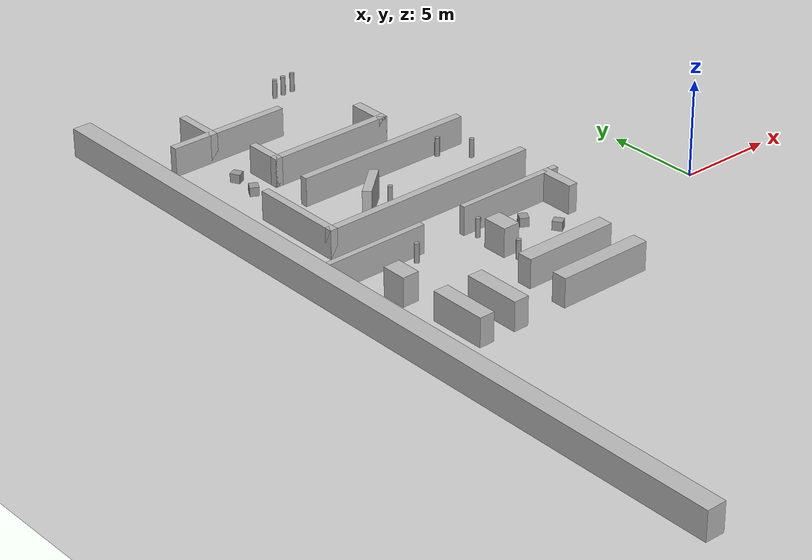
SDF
<sdf version="1.7">
 <world name="test_world">
  <model name="ground_plane">
   <static>1</static>
   <link name="link">
    <collision name="collision">
     <geometry><plane><normal>0 0 1</normal><size>100 100</size></plane></geometry>
    </collision>
    <visual name="visual">
     <geometry><plane><normal>0 0 1</normal><size>100 100</size></plane></geometry>
     <material>
      <script>
       <uri>file://media/materials/scripts/gazebo.material</uri>
       <name>__default__</name>
       <n>Gazebo/Grey</n>
      </script>
     </material>
    </visual>
   </link>
  </model>
  <model name="outer_left">
   <static>1</static>
   <pose>-20.5 0 0.75 0 -0 0</pose>
   <link name="link">
    <collision name="collision"><geometry><box><size>1 42 1.5</size></box></geometry></collision>
    <visual name="visual">
     <geometry><box><size>1 42 1.5</size></box></geometry>
     <material>
      <script>
       <uri>file://media/materials/scripts/gazebo.material</uri>
       <name>__default__</name>
       <n>Gazebo/Grey</n>
      </script>
     </material>
    </visual>
   </link>
  </model>
  <model name="hw_0">
   <static>1</static>
   <pose>-15.3 16.25 0.75 0 -0 0</pose>
   <link name="link">
    <collision name="collision"><geometry><box><size>6.5 0.4 1.5</size></box></geometry></collision>
    <visual name="visual">
     <geometry><box><size>6.5 0.4 1.5</size></box></geometry>
     <material>
      <script>
       <uri>file://media/materials/scripts/gazebo.material</uri>
       <name>__default__</name>
       <n>Gazebo/Grey</n>
      </script>
     </material>
    </visual>
   </link>
  </model>
  <model name="hw_1">
   <static>1</static>
   <pose>-12.05 5.25 0.75 0 -0 0</pose>
   <link name="link">
    <collision name="collision"><geometry><box><size>12 0.4 1.5</size></box></geometry></collision>
    <visual name="visual">
     <geometry><box><size>12 0.4 1.5</size></box></geometry>
     <material>
      <script>
       <uri>file://media/materials/scripts/gazebo.material</uri>
       <name>__default__</name>
       <n>Gazebo/Grey</n>
      </script>
     </material>
    </visual>
   </link>
  </model>
  <model name="hw_2">
   <static>1</static>
   <pose>-10.9 9.85 0.75 0 -0 0</pose>
   <link name="link">
    <collision name="collision"><geometry><box><size>9.7 0.4 1.5</size></box></geometry></collision>
    <visual name="visual">
     <geometry><box><size>9.7 0.4 1.5</size></box></geometry>
     <material>
      <script>
       <uri>file://media/materials/scripts/gazebo.material</uri>
       <name>__default__</name>
       <n>Gazebo/Grey</n>
      </script>
     </material>
    </visual>
   </link>
  </model>
  <model name="hw_3">
   <static>1</static>
   <pose>-12.2 12.25 0.75 0 -0 0</pose>
   <link name="link">
    <collision name="collision"><geometry><box><size>6.9 0.4 1.5</size></box></geometry></collision>
    <visual name="visual">
     <geometry><box><size>6.9 0.4 1.5</size></box></geometry>
     <material>
      <script>
       <uri>file://media/materials/scripts/gazebo.material</uri>
       <name>__default__</name>
       <n>Gazebo/Grey</n>
      </script>
     </material>
    </visual>
   </link>
  </model>
  <model name="hw_4">
   <static>1</static>
   <pose>-13.6 7.55 0.75 0 -0 0.712137</pose>
   <link name="link">
    <collision name="collision"><geometry><box><size>2.16529 0.451675 1.5</size></box></geometry></collision>
    <visual name="visual">
     <geometry><box><size>2.16529 0.451675 1.5</size></box></geometry>
     <material>
      <script>
       <uri>file://media/materials/scripts/gazebo.material</uri>
       <name>__default__</name>
       <n>Gazebo/Grey</n>
      </script>
     </material>
    </visual>
   </link>
  </model>
  <model name="hw_8">
   <static>1</static>
   <pose>-10.55 -2.35 0.75 0 -0 0</pose>
   <link name="link">
    <collision name="collision"><geometry><box><size>5 0.8 1.5</size></box></geometry></collision>
    <visual name="visual">
     <geometry><box><size>5 0.8 1.5</size></box></geometry>
     <material>
      <script>
       <uri>file://media/materials/scripts/gazebo.material</uri>
       <name>__default__</name>
       <n>Gazebo/Grey</n>
      </script>
     </material>
    </visual>
   </link>
  </model>
  <model name="hw_9">
   <static>1</static>
   <pose>-10.55 -4.55 0.75 0 -0 0</pose>
   <link name="link">
    <collision name="collision"><geometry><box><size>5 0.8 1.5</size></box></geometry></collision>
    <visual name="visual">
     <geometry><box><size>5 0.8 1.5</size></box></geometry>
     <material>
      <script>
       <uri>file://media/materials/scripts/gazebo.material</uri>
       <name>__default__</name>
       <n>Gazebo/Grey</n>
      </script>
     </material>
    </visual>
   </link>
  </model>
  <model name="hw_10">
   <static>1</static>
   <pose>-9.1 2.9 0.75 0 -0 0</pose>
   <link name="link">
    <collision name="collision"><geometry><box><size>5.9 0.3 1.5</size></box></geometry></collision>
    <visual name="visual">
     <geometry><box><size>5.9 0.3 1.5</size></box></geometry>
     <material>
      <script>
       <uri>file://media/materials/scripts/gazebo.material</uri>
       <name>__default__</name>
       <n>Gazebo/Grey</n>
      </script>
     </material>
    </visual>
   </link>
  </model>
  <model name="vw_132">
   <static>1</static>
   <pose>-16.25 17.3 0.75 0 -0 0</pose>
   <link name="link">
    <collision name="collision"><geometry><box><size>0.4 2.5 1.5</size></box></geometry></collision>
    <visual name="visual">
     <geometry><box><size>0.4 2.5 1.5</size></box></geometry>
     <material>
      <script>
       <uri>file://media/materials/scripts/gazebo.material</uri>
       <name>__default__</name>
       <n>Gazebo/Grey</n>
      </script>
     </material>
    </visual>
   </link>
  </model>
  <model name="vw_155">
   <static>1</static>
   <pose>-15.45 13.05 0.75 0 -0 0</pose>
   <link name="link">
    <collision name="collision"><geometry><box><size>0.4 2 1.5</size></box></geometry></collision>
    <visual name="visual">
     <geometry><box><size>0.4 2 1.5</size></box></geometry>
     <material>
      <script>
       <uri>file://media/materials/scripts/gazebo.material</uri>
       <name>__default__</name>
       <n>Gazebo/Grey</n>
      </script>
     </material>
    </visual>
   </link>
  </model>
  <model name="vw_156">
   <static>1</static>
   <pose>-9 13.05 0.75 0 -0 0</pose>
   <link name="link">
    <collision name="collision"><geometry><box><size>0.5 2 1.5</size></box></geometry></collision>
    <visual name="visual">
     <geometry><box><size>0.5 2 1.5</size></box></geometry>
     <material>
      <script>
       <uri>file://media/materials/scripts/gazebo.material</uri>
       <name>__default__</name>
       <n>Gazebo/Grey</n>
      </script>
     </material>
    </visual>
   </link>
  </model>
  <model name="vw_181">
   <static>1</static>
   <pose>-17.85 7.55 0.75 0 -0 0</pose>
   <link name="link">
    <collision name="collision"><geometry><box><size>0.4 5 1.5</size></box></geometry></collision>
    <visual name="visual">
     <geometry><box><size>0.4 5 1.5</size></box></geometry>
     <material>
      <script>
       <uri>file://media/materials/scripts/gazebo.material</uri>
       <name>__default__</name>
       <n>Gazebo/Grey</n>
      </script>
     </material>
    </visual>
   </link>
  </model>
  <model name="vw_228">
   <static>1</static>
   <pose>-6.8 2.05 0.75 0 -0 0</pose>
   <link name="link">
    <collision name="collision"><geometry><box><size>0.5 2 1.5</size></box></geometry></collision>
    <visual name="visual">
     <geometry><box><size>0.5 2 1.5</size></box></geometry>
     <material>
      <script>
       <uri>file://media/materials/scripts/gazebo.material</uri>
       <name>__default__</name>
       <n>Gazebo/Grey</n>
      </script>
     </material>
    </visual>
   </link>
  </model>
  <model name="vw_236">
   <static>1</static>
   <pose>-11.6 0.7 0.75 0 -0 0</pose>
   <link name="link">
    <collision name="collision"><geometry><box><size>0.9 1.3 1.5</size></box></geometry></collision>
    <visual name="visual">
     <geometry><box><size>0.9 1.3 1.5</size></box></geometry>
     <material>
      <script>
       <uri>file://media/materials/scripts/gazebo.material</uri>
       <name>__default__</name>
       <n>Gazebo/Grey</n>
      </script>
     </material>
    </visual>
   </link>
  </model>
  <model name="vw_241">
   <static>1</static>
   <pose>-17.65 -3.45 0.75 0 -0 0</pose>
   <link name="link">
    <collision name="collision"><geometry><box><size>0.8 3 1.5</size></box></geometry></collision>
    <visual name="visual">
     <geometry><box><size>0.8 3 1.5</size></box></geometry>
     <material>
      <script>
       <uri>file://media/materials/scripts/gazebo.material</uri>
       <name>__default__</name>
       <n>Gazebo/Grey</n>
      </script>
     </material>
    </visual>
   </link>
  </model>
  <model name="vw_242">
   <static>1</static>
   <pose>-15.65 -3.45 0.75 0 -0 0</pose>
   <link name="link">
    <collision name="collision"><geometry><box><size>0.8 3 1.5</size></box></geometry></collision>
    <visual name="visual">
     <geometry><box><size>0.8 3 1.5</size></box></geometry>
     <material>
      <script>
       <uri>file://media/materials/scripts/gazebo.material</uri>
       <name>__default__</name>
       <n>Gazebo/Grey</n>
      </script>
     </material>
    </visual>
   </link>
  </model>
  <model name="hw_10_clone">
   <static>1</static>
   <pose>-17.4347 2.88932 0.75 0 -0 0</pose>
   <link name="link">
    <collision name="collision"><geometry><box><size>5.9 0.3 1.5</size></box></geometry></collision>
    <visual name="visual">
     <geometry><box><size>5.9 0.3 1.5</size></box></geometry>
     <material>
      <script>
       <uri>file://media/materials/scripts/gazebo.material</uri>
       <name>__default__</name>
       <n>Gazebo/Grey</n>
      </script>
     </material>
    </visual>
   </link>
  </model>
  <model name="vw_236_clone">
   <static>1</static>
   <pose>-17.8746 0.397386 0.75 0 -0 0</pose>
   <link name="link">
    <collision name="collision"><geometry><box><size>0.9 1.3 1.5</size></box></geometry></collision>
    <visual name="visual">
     <geometry><box><size>0.9 1.3 1.5</size></box></geometry>
     <material>
      <script>
       <uri>file://media/materials/scripts/gazebo.material</uri>
       <name>__default__</name>
       <n>Gazebo/Grey</n>
      </script>
     </material>
    </visual>
   </link>
  </model>
  <model name="unit_cylinder_clone_1_clone_0">
   <pose>-15.2676 2.35643 0.5 0 0 -6.2e-05</pose>
   <link name="link">
    <inertial>
     <mass>1</mass>
     <inertia><ixx>0.145833</ixx><ixy>0</ixy><ixz>0</ixz><iyy>0.145833</iyy><iyz>0</iyz><izz>0.125</izz></inertia>
    </inertial>
    <collision name="collision">
     <geometry><cylinder><radius>0.124927</radius><length>1</length></cylinder></geometry>
    </collision>
    <visual name="visual">
     <geometry><cylinder><radius>0.124927</radius><length>1</length></cylinder></geometry>
     <material>
      <script><name>Gazebo/Grey</name><uri>file://media/materials/scripts/gazebo.material</uri></script>
     </material>
    </visual>
   </link>
  </model>
  <model name="unit_cylinder_clone_1_clone_1">
   <pose>-11.6303 2.27311 0.5 0 0 -6.1e-05</pose>
   <link name="link">
    <inertial>
     <mass>1</mass>
     <inertia><ixx>0.145833</ixx><ixy>0</ixy><ixz>0</ixz><iyy>0.145833</iyy><iyz>0</iyz><izz>0.125</izz></inertia>
    </inertial>
    <collision name="collision">
     <geometry><cylinder><radius>0.124927</radius><length>1</length></cylinder></geometry>
    </collision>
    <visual name="visual">
     <geometry><cylinder><radius>0.124927</radius><length>1</length></cylinder></geometry>
     <material>
      <script><name>Gazebo/Grey</name><uri>file://media/materials/scripts/gazebo.material</uri></script>
     </material>
    </visual>
   </link>
  </model>
  <model name="unit_cylinder_clone_1_clone_4">
   <pose>-14.7934 12.8589 0.5 0 0 -6.1e-05</pose>
   <link name="link">
    <inertial>
     <mass>1</mass>
     <inertia><ixx>0.145833</ixx><ixy>0</ixy><ixz>0</ixz><iyy>0.145833</iyy><iyz>0</iyz><izz>0.125</izz></inertia>
    </inertial>
    <collision name="collision">
     <geometry><cylinder><radius>0.124927</radius><length>1</length></cylinder></geometry>
    </collision>
    <visual name="visual">
     <geometry><cylinder><radius>0.124927</radius><length>1</length></cylinder></geometry>
     <material>
      <script><name>Gazebo/Grey</name><uri>file://media/materials/scripts/gazebo.material</uri></script>
     </material>
    </visual>
   </link>
  </model>
  <model name="unit_cylinder_clone_1_clone_5">
   <pose>-9.71523 12.857 0.5 0 0 -6e-05</pose>
   <link name="link">
    <inertial>
     <mass>1</mass>
     <inertia><ixx>0.145833</ixx><ixy>0</ixy><ixz>0</ixz><iyy>0.145833</iyy><iyz>0</iyz><izz>0.125</izz></inertia>
    </inertial>
    <collision name="collision">
     <geometry><cylinder><radius>0.124927</radius><length>1</length></cylinder></geometry>
    </collision>
    <visual name="visual">
     <geometry><cylinder><radius>0.124927</radius><length>1</length></cylinder></geometry>
     <material>
      <script><name>Gazebo/Grey</name><uri>file://media/materials/scripts/gazebo.material</uri></script>
     </material>
    </visual>
   </link>
  </model>
  <model name="unit_cylinder_clone_3_clone_4">
   <pose>-11.5901 -0.417601 0.49999 -0 -0 -5.7e-05</pose>
   <link name="link">
    <inertial>
     <mass>1</mass>
     <inertia><ixx>0.145833</ixx><ixy>0</ixy><ixz>0</ixz><iyy>0.145833</iyy><iyz>0</iyz><izz>0.125</izz></inertia>
    </inertial>
    <collision name="collision">
     <geometry><cylinder><radius>0.124927</radius><length>1</length></cylinder></geometry>
    </collision>
    <visual name="visual">
     <geometry><cylinder><radius>0.124927</radius><length>1</length></cylinder></geometry>
     <material>
      <script><name>Gazebo/Grey</name><uri>file://media/materials/scripts/gazebo.material</uri></script>
     </material>
    </visual>
   </link>
  </model>
  <model name="unit_cylinder_clone_3_clone_5">
   <pose>-12.6584 7.2465 0.499991 -0 -0 -5.4e-05</pose>
   <link name="link">
    <inertial>
     <mass>1</mass>
     <inertia><ixx>0.145833</ixx><ixy>0</ixy><ixz>0</ixz><iyy>0.145833</iyy><iyz>0</iyz><izz>0.125</izz></inertia>
    </inertial>
    <collision name="collision">
     <geometry><cylinder><radius>0.124927</radius><length>1</length></cylinder></geometry>
    </collision>
    <visual name="visual">
     <geometry><cylinder><radius>0.124927</radius><length>1</length></cylinder></geometry>
     <material>
      <script><name>Gazebo/Grey</name><uri>file://media/materials/scripts/gazebo.material</uri></script>
     </material>
    </visual>
   </link>
  </model>
  <model name="unit_cylinder_clone_3_clone_6">
   <pose>-9.20111 19.6313 0.499991 -0 -0 -5.4e-05</pose>
   <link name="link">
    <inertial>
     <mass>1</mass>
     <inertia><ixx>0.145833</ixx><ixy>0</ixy><ixz>0</ixz><iyy>0.145833</iyy><iyz>0</iyz><izz>0.125</izz></inertia>
    </inertial>
    <collision name="collision">
     <geometry><cylinder><radius>0.124927</radius><length>1</length></cylinder></geometry>
    </collision>
    <visual name="visual">
     <geometry><cylinder><radius>0.124927</radius><length>1</length></cylinder></geometry>
     <material>
      <script><name>Gazebo/Grey</name><uri>file://media/materials/scripts/gazebo.material</uri></script>
     </material>
    </visual>
   </link>
  </model>
  <model name="unit_cylinder_clone_3_clone_7">
   <pose>-9.74261 19.6217 0.49999 -0 -0 -5.6e-05</pose>
   <link name="link">
    <inertial>
     <mass>1</mass>
     <inertia><ixx>0.145833</ixx><ixy>0</ixy><ixz>0</ixz><iyy>0.145833</iyy><iyz>0</iyz><izz>0.125</izz></inertia>
    </inertial>
    <collision name="collision">
     <geometry><cylinder><radius>0.124927</radius><length>1</length></cylinder></geometry>
    </collision>
    <visual name="visual">
     <geometry><cylinder><radius>0.124927</radius><length>1</length></cylinder></geometry>
     <material>
      <script><name>Gazebo/Grey</name><uri>file://media/materials/scripts/gazebo.material</uri></script>
     </material>
    </visual>
   </link>
  </model>
  <model name="unit_cylinder_clone_3_clone_8">
   <pose>-8.60297 19.6564 0.499991 -0 -0 -5.4e-05</pose>
   <link name="link">
    <inertial>
     <mass>1</mass>
     <inertia><ixx>0.145833</ixx><ixy>0</ixy><ixz>0</ixz><iyy>0.145833</iyy><iyz>0</iyz><izz>0.125</izz></inertia>
    </inertial>
    <collision name="collision">
     <geometry><cylinder><radius>0.124927</radius><length>1</length></cylinder></geometry>
    </collision>
    <visual name="visual">
     <geometry><cylinder><radius>0.124927</radius><length>1</length></cylinder></geometry>
     <material>
      <script><name>Gazebo/Grey</name><uri>file://media/materials/scripts/gazebo.material</uri></script>
     </material>
    </visual>
   </link>
  </model>
  <model name="unit_box_0_clone_0_clone">
   <pose>-8.3331 0.396983 0.235786 0 -0 0.572818</pose>
   <link name="link">
    <inertial>
     <mass>1</mass>
     <inertia>
      <ixx>0.166667</ixx>
      <ixy>0</ixy>
      <ixz>0</ixz>
      <iyy>0.166667</iyy>
      <iyz>0</iyz>
      <izz>0.166667</izz>
     </inertia>
    </inertial>
    <collision name="collision">
     <geometry><box><size>0.450934 0.510982 0.471572</size></box></geometry>
    </collision>
    <visual name="visual">
     <geometry><box><size>0.450934 0.510982 0.471572</size></box></geometry>
     <material>
      <script><name>Gazebo/Grey</name><uri>file://media/materials/scripts/gazebo.material</uri></script>
     </material>
    </visual>
   </link>
  </model>
  <model name="unit_box_0_clone_clone_clone_0">
   <pose>-9.27876 1.74091 0.235786 0 0 -0.520666</pose>
   <link name="link">
    <inertial>
     <mass>1</mass>
     <inertia>
      <ixx>0.166667</ixx>
      <ixy>0</ixy>
      <ixz>0</ixz>
      <iyy>0.166667</iyy>
      <iyz>0</iyz>
      <izz>0.166667</izz>
     </inertia>
    </inertial>
    <collision name="collision">
     <geometry><box><size>0.450934 0.510983 0.471572</size></box></geometry>
    </collision>
    <visual name="visual">
     <geometry><box><size>0.450934 0.510983 0.471572</size></box></geometry>
     <material>
      <script><name>Gazebo/Grey</name><uri>file://media/materials/scripts/gazebo.material</uri></script>
     </material>
    </visual>
   </link>
  </model>
  <model name="unit_box_0_clone_clone_clone_1">
   <pose>-16.8269 12.2824 0.235786 0 0 -0.520666</pose>
   <link name="link">
    <inertial>
     <mass>1</mass>
     <inertia>
      <ixx>0.166667</ixx>
      <ixy>0</ixy>
      <ixz>0</ixz>
      <iyy>0.166667</iyy>
      <iyz>0</iyz>
      <izz>0.166667</izz>
     </inertia>
    </inertial>
    <collision name="collision">
     <geometry><box><size>0.450934 0.510983 0.471572</size></box></geometry>
    </collision>
    <visual name="visual">
     <geometry><box><size>0.450934 0.510983 0.471572</size></box></geometry>
     <material>
      <script><name>Gazebo/Grey</name><uri>file://media/materials/scripts/gazebo.material</uri></script>
     </material>
    </visual>
   </link>
  </model>
  <model name="unit_box_0_clone_clone_clone_2">
   <pose>-16.6481 13.8254 0.235786 0 -0 0.477875</pose>
   <link name="link">
    <inertial>
     <mass>1</mass>
     <inertia>
      <ixx>0.166667</ixx>
      <ixy>0</ixy>
      <ixz>0</ixz>
      <iyy>0.166667</iyy>
      <iyz>0</iyz>
      <izz>0.166667</izz>
     </inertia>
    </inertial>
    <collision name="collision">
     <geometry><box><size>0.450934 0.510983 0.471572</size></box></geometry>
    </collision>
    <visual name="visual">
     <geometry><box><size>0.450934 0.510983 0.471572</size></box></geometry>
     <material>
      <script><name>Gazebo/Grey</name><uri>file://media/materials/scripts/gazebo.material</uri></script>
     </material>
    </visual>
   </link>
  </model>
  <model name="unit_cylinder_clone_3_clone_clone_1">
   <pose>-7.74073 9.5013 0.499991 0 -0 -5.5e-05</pose>
   <link name="link">
    <inertial>
     <mass>1</mass>
     <inertia><ixx>0.145833</ixx><ixy>0</ixy><ixz>0</ixz><iyy>0.145833</iyy><iyz>0</iyz><izz>0.125</izz></inertia>
    </inertial>
    <collision name="collision">
     <geometry><cylinder><radius>0.124927</radius><length>1</length></cylinder></geometry>
    </collision>
    <visual name="visual">
     <geometry><cylinder><radius>0.124927</radius><length>1</length></cylinder></geometry>
     <material>
      <script><name>Gazebo/Grey</name><uri>file://media/materials/scripts/gazebo.material</uri></script>
     </material>
    </visual>
   </link>
  </model>
  <model name="unit_cylinder_clone_3_clone_clone_2">
   <pose>-6.57493 8.29867 0.499998 0 0 -5.8e-05</pose>
   <link name="link">
    <inertial>
     <mass>1</mass>
     <inertia><ixx>0.145833</ixx><ixy>0</ixy><ixz>0</ixz><iyy>0.145833</iyy><iyz>0</iyz><izz>0.125</izz></inertia>
    </inertial>
    <collision name="collision">
     <geometry><cylinder><radius>0.124927</radius><length>1</length></cylinder></geometry>
    </collision>
    <visual name="visual">
     <geometry><cylinder><radius>0.124927</radius><length>1</length></cylinder></geometry>
     <material>
      <script><name>Gazebo/Grey</name><uri>file://media/materials/scripts/gazebo.material</uri></script>
     </material>
    </visual>
   </link>
  </model>
  <model name="unit_cylinder_clone_3_clone_clone_3">
   <pose>-6.71768 5.67511 0.499999 0 0 -5.5e-05</pose>
   <link name="link">
    <inertial>
     <mass>1</mass>
     <inertia><ixx>0.145833</ixx><ixy>0</ixy><ixz>0</ixz><iyy>0.145833</iyy><iyz>0</iyz><izz>0.125</izz></inertia>
    </inertial>
    <collision name="collision">
     <geometry><cylinder><radius>0.124927</radius><length>1</length></cylinder></geometry>
    </collision>
    <visual name="visual">
     <geometry><cylinder><radius>0.124927</radius><length>1</length></cylinder></geometry>
     <material>
      <script><name>Gazebo/Grey</name><uri>file://media/materials/scripts/gazebo.material</uri></script>
     </material>
    </visual>
   </link>
  </model>
 </world>
</sdf>
